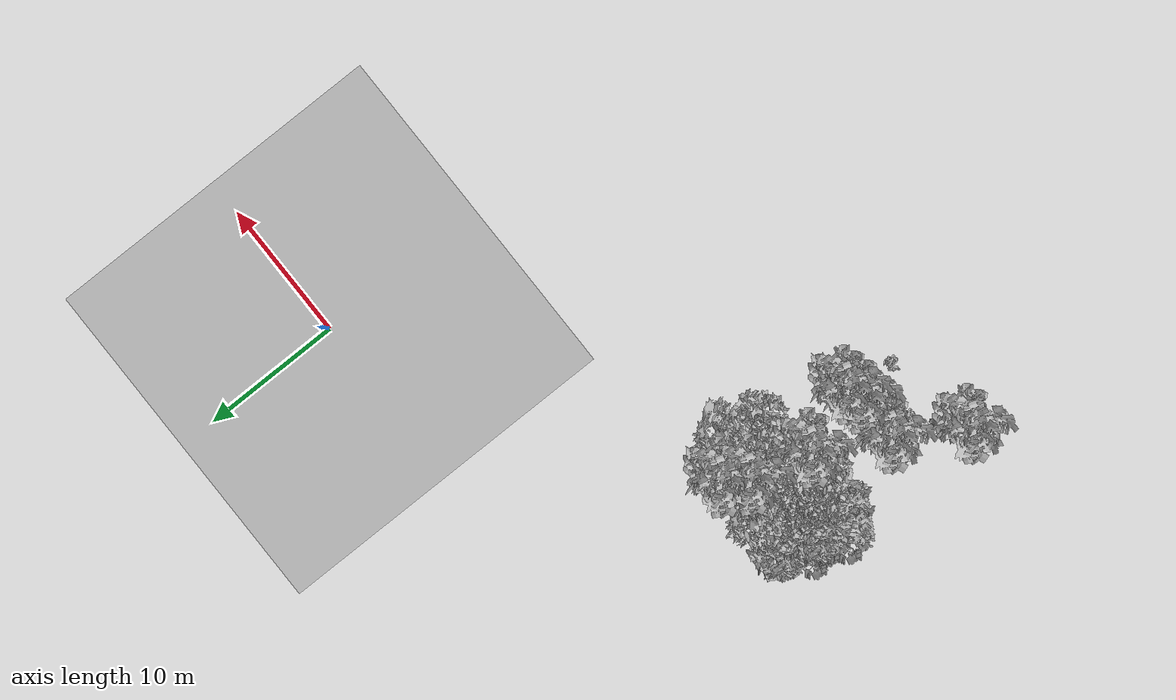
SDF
<sdf version="1.7">
 <world name="default">
  <model name="ground_plane">
   <static>1</static>
   <link name="link">
    <collision name="collision">
     <pose>-50 0 0 0 -0 0</pose>
     <geometry><plane><normal>0 0 1</normal><size>80 80</size></plane></geometry>
     <surface><contact><ode><min_depth>0.01</min_depth><max_vel>0</max_vel></ode></contact></surface>
    </collision>
    <visual name="grass">
     <cast_shadows>0</cast_shadows>
     <geometry>
      <mesh>
       <scale>0.46714285714285714 0.46714285714285714 0.1</scale>
       <uri>file://grass_plane/meshes/grass_plane.dae</uri>
      </mesh>
     </geometry>
    </visual>
   </link>
  </model>
  <model name="Tree 116">
   <static>1</static>
   <pose>-25.24563482658276 -19.226618161263687 0 1.57079 -0 0</pose>
   <link name="link">
    <collision name="collision">
     <geometry><mesh><scale>3.5 5 3.5</scale><uri>model://tree_9/meshes/tree_9.obj</uri></mesh></geometry>
    </collision>
    <visual name="visual">
     <geometry><mesh><scale>3.5 5 3.5</scale><uri>model://tree_9/meshes/tree_9.obj</uri></mesh></geometry>
    </visual>
   </link>
  </model>
  <model name="Tree 118">
   <static>1</static>
   <pose>-24.490371718097492 -23.640831827640074 0 1.57079 -0 0</pose>
   <link name="link">
    <collision name="collision">
     <geometry><mesh><scale>3.5 5 3.5</scale><uri>model://tree_9/meshes/tree_9.obj</uri></mesh></geometry>
    </collision>
    <visual name="visual">
     <geometry><mesh><scale>3.5 5 3.5</scale><uri>model://tree_9/meshes/tree_9.obj</uri></mesh></geometry>
    </visual>
   </link>
  </model>
  <model name="Tree 132">
   <static>1</static>
   <pose>-23.184953060325313 -13.715686504279976 0 1.57079 -0 0</pose>
   <link name="link">
    <collision name="collision">
     <geometry><mesh><scale>3.5 5 3.5</scale><uri>model://tree_9/meshes/tree_9.obj</uri></mesh></geometry>
    </collision>
    <visual name="visual">
     <geometry><mesh><scale>3.5 5 3.5</scale><uri>model://tree_9/meshes/tree_9.obj</uri></mesh></geometry>
    </visual>
   </link>
  </model>
  <model name="Tree 153">
   <static>1</static>
   <pose>-24.647784751836657 -16.289933524823645 0 1.57079 -0 0</pose>
   <link name="link">
    <collision name="collision">
     <geometry><mesh><scale>3.5 5 3.5</scale><uri>model://tree_2/meshes/tree_2.obj</uri></mesh></geometry>
    </collision>
    <visual name="visual">
     <geometry><mesh><scale>3.5 5 3.5</scale><uri>model://tree_2/meshes/tree_2.obj</uri></mesh></geometry>
    </visual>
   </link>
  </model>
  <model name="Tree 154">
   <static>1</static>
   <pose>-23.54956282626521 -23.37497832355841 0 1.57079 -0 0</pose>
   <link name="link">
    <collision name="collision">
     <geometry><mesh><scale>3.5 5 3.5</scale><uri>model://tree_9/meshes/tree_9.obj</uri></mesh></geometry>
    </collision>
    <visual name="visual">
     <geometry><mesh><scale>3.5 5 3.5</scale><uri>model://tree_9/meshes/tree_9.obj</uri></mesh></geometry>
    </visual>
   </link>
  </model>
  <model name="Tree 159">
   <static>1</static>
   <pose>-24.210653283695706 -15.219243845675294 0 1.57079 -0 0</pose>
   <link name="link">
    <collision name="collision">
     <geometry><mesh><scale>3.5 5 3.5</scale><uri>model://tree_9/meshes/tree_9.obj</uri></mesh></geometry>
    </collision>
    <visual name="visual">
     <geometry><mesh><scale>3.5 5 3.5</scale><uri>model://tree_9/meshes/tree_9.obj</uri></mesh></geometry>
    </visual>
   </link>
  </model>
  <model name="Tree 200">
   <static>1</static>
   <pose>-28.195686925985747 -17.972710262287457 0 1.57079 -0 0</pose>
   <link name="link">
    <collision name="collision">
     <geometry><mesh><scale>3.5 5 3.5</scale><uri>model://tree_2/meshes/tree_2.obj</uri></mesh></geometry>
    </collision>
    <visual name="visual">
     <geometry><mesh><scale>3.5 5 3.5</scale><uri>model://tree_2/meshes/tree_2.obj</uri></mesh></geometry>
    </visual>
   </link>
  </model>
  <model name="Tree 279">
   <static>1</static>
   <pose>-29.289672820131123 -17.38214986762965 0 1.57079 -0 0</pose>
   <link name="link">
    <collision name="collision">
     <geometry><mesh><scale>3.5 5 3.5</scale><uri>model://tree_2/meshes/tree_2.obj</uri></mesh></geometry>
    </collision>
    <visual name="visual">
     <geometry><mesh><scale>3.5 5 3.5</scale><uri>model://tree_2/meshes/tree_2.obj</uri></mesh></geometry>
    </visual>
   </link>
  </model>
  <model name="Tree 312">
   <static>1</static>
   <pose>-28.535518461506136 -16.197226448436084 0 1.57079 -0 0</pose>
   <link name="link">
    <collision name="collision">
     <geometry><mesh><scale>3.5 5 3.5</scale><uri>model://tree_2/meshes/tree_2.obj</uri></mesh></geometry>
    </collision>
    <visual name="visual">
     <geometry><mesh><scale>3.5 5 3.5</scale><uri>model://tree_2/meshes/tree_2.obj</uri></mesh></geometry>
    </visual>
   </link>
  </model>
  <model name="Tree 340">
   <static>1</static>
   <pose>-28.65702400360805 -15.055393075168631 0 1.57079 -0 0</pose>
   <link name="link">
    <collision name="collision">
     <geometry><mesh><scale>3.5 5 3.5</scale><uri>model://tree_2/meshes/tree_2.obj</uri></mesh></geometry>
    </collision>
    <visual name="visual">
     <geometry><mesh><scale>3.5 5 3.5</scale><uri>model://tree_2/meshes/tree_2.obj</uri></mesh></geometry>
    </visual>
   </link>
  </model>
  <model name="Tree 358">
   <static>1</static>
   <pose>-22.932301001570202 -16.908631481751975 0 1.57079 -0 0</pose>
   <link name="link">
    <collision name="collision">
     <geometry><mesh><scale>3.5 5 3.5</scale><uri>model://tree_2/meshes/tree_2.obj</uri></mesh></geometry>
    </collision>
    <visual name="visual">
     <geometry><mesh><scale>3.5 5 3.5</scale><uri>model://tree_2/meshes/tree_2.obj</uri></mesh></geometry>
    </visual>
   </link>
  </model>
  <model name="Tree 422">
   <static>1</static>
   <pose>-27.610587199718452 -23.648574940186997 0 1.57079 -0 0</pose>
   <link name="link">
    <collision name="collision">
     <geometry><mesh><scale>3.5 5 3.5</scale><uri>model://tree_9/meshes/tree_9.obj</uri></mesh></geometry>
    </collision>
    <visual name="visual">
     <geometry><mesh><scale>3.5 5 3.5</scale><uri>model://tree_9/meshes/tree_9.obj</uri></mesh></geometry>
    </visual>
   </link>
  </model>
  <model name="Tree 562">
   <static>1</static>
   <pose>-30.2408395843432 -27.912288783172777 0 1.57079 -0 0</pose>
   <link name="link">
    <collision name="collision">
     <geometry><mesh><scale>3.5 5 3.5</scale><uri>model://tree_9/meshes/tree_9.obj</uri></mesh></geometry>
    </collision>
    <visual name="visual">
     <geometry><mesh><scale>3.5 5 3.5</scale><uri>model://tree_9/meshes/tree_9.obj</uri></mesh></geometry>
    </visual>
   </link>
  </model>
  <model name="Bush 48">
   <static>1</static>
   <pose>-28.294148278269745 -25.47334539822531 0 1.57079 -0 0</pose>
   <link name="link">
    <collision name="collision">
     <geometry><mesh><scale>2 2 2</scale><uri>model://bush_2/meshes/bush_2.obj</uri></mesh></geometry>
     <surface><contact><collide_without_contact>false</collide_without_contact></contact></surface>
    </collision>
    <visual name="visual">
     <geometry><mesh><scale>2 2 2</scale><uri>model://bush_2/meshes/bush_2.obj</uri></mesh></geometry>
    </visual>
   </link>
  </model>
  <model name="Bush 69">
   <static>1</static>
   <pose>-28.8216672484319 -26.715461170658514 0 1.57079 -0 0</pose>
   <link name="link">
    <collision name="collision">
     <geometry><mesh><scale>2 2 2</scale><uri>model://bush_2/meshes/bush_2.obj</uri></mesh></geometry>
     <surface><contact><collide_without_contact>false</collide_without_contact></contact></surface>
    </collision>
    <visual name="visual">
     <geometry><mesh><scale>2 2 2</scale><uri>model://bush_2/meshes/bush_2.obj</uri></mesh></geometry>
    </visual>
   </link>
  </model>
  <model name="Bush 128">
   <static>1</static>
   <pose>-29.173840663325308 -14.282500518536203 0 1.57079 -0 0</pose>
   <link name="link">
    <collision name="collision">
     <geometry><mesh><scale>2 2 2</scale><uri>model://bush_2/meshes/bush_2.obj</uri></mesh></geometry>
     <surface><contact><collide_without_contact>false</collide_without_contact></contact></surface>
    </collision>
    <visual name="visual">
     <geometry><mesh><scale>2 2 2</scale><uri>model://bush_2/meshes/bush_2.obj</uri></mesh></geometry>
    </visual>
   </link>
  </model>
  <model name="Bush 162">
   <static>1</static>
   <pose>-27.27859116705745 -17.434106972118954 0 1.57079 -0 0</pose>
   <link name="link">
    <collision name="collision">
     <geometry><mesh><scale>2 2 2</scale><uri>model://bush_2/meshes/bush_2.obj</uri></mesh></geometry>
     <surface><contact><collide_without_contact>false</collide_without_contact></contact></surface>
    </collision>
    <visual name="visual">
     <geometry><mesh><scale>2 2 2</scale><uri>model://bush_2/meshes/bush_2.obj</uri></mesh></geometry>
    </visual>
   </link>
  </model>
  <model name="Bush 311">
   <static>1</static>
   <pose>-29.13265650306692 -16.47178595528682 0 1.57079 -0 0</pose>
   <link name="link">
    <collision name="collision">
     <geometry><mesh><scale>2 2 2</scale><uri>model://bush_2/meshes/bush_2.obj</uri></mesh></geometry>
     <surface><contact><collide_without_contact>false</collide_without_contact></contact></surface>
    </collision>
    <visual name="visual">
     <geometry><mesh><scale>2 2 2</scale><uri>model://bush_2/meshes/bush_2.obj</uri></mesh></geometry>
    </visual>
   </link>
  </model>
  <model name="Bush 319">
   <static>1</static>
   <pose>-23.7470203367347 -19.329719414078852 0 1.57079 -0 0</pose>
   <link name="link">
    <collision name="collision">
     <geometry><mesh><scale>2 2 2</scale><uri>model://bush_2/meshes/bush_2.obj</uri></mesh></geometry>
     <surface><contact><collide_without_contact>false</collide_without_contact></contact></surface>
    </collision>
    <visual name="visual">
     <geometry><mesh><scale>2 2 2</scale><uri>model://bush_2/meshes/bush_2.obj</uri></mesh></geometry>
    </visual>
   </link>
  </model>
  <model name="Bush 343">
   <static>1</static>
   <pose>-24.11555489374387 -19.16224193324694 0 1.57079 -0 0</pose>
   <link name="link">
    <collision name="collision">
     <geometry><mesh><scale>2 2 2</scale><uri>model://bush_5/meshes/bush_5.obj</uri></mesh></geometry>
     <surface><contact><collide_without_contact>false</collide_without_contact></contact></surface>
    </collision>
    <visual name="visual">
     <geometry><mesh><scale>2 2 2</scale><uri>model://bush_5/meshes/bush_5.obj</uri></mesh></geometry>
    </visual>
   </link>
  </model>
  <model name="Bush 347">
   <static>1</static>
   <pose>-25.31925824855311 -28.083265579123147 0 1.57079 -0 0</pose>
   <link name="link">
    <collision name="collision">
     <geometry><mesh><scale>2 2 2</scale><uri>model://bush_2/meshes/bush_2.obj</uri></mesh></geometry>
     <surface><contact><collide_without_contact>false</collide_without_contact></contact></surface>
    </collision>
    <visual name="visual">
     <geometry><mesh><scale>2 2 2</scale><uri>model://bush_2/meshes/bush_2.obj</uri></mesh></geometry>
    </visual>
   </link>
  </model>
  <model name="Bush 359">
   <static>1</static>
   <pose>-25.046784973136397 -24.202091685205964 0 1.57079 -0 0</pose>
   <link name="link">
    <collision name="collision">
     <geometry><mesh><scale>2 2 2</scale><uri>model://bush_0/meshes/bush_0.obj</uri></mesh></geometry>
     <surface><contact><collide_without_contact>false</collide_without_contact></contact></surface>
    </collision>
    <visual name="visual">
     <geometry><mesh><scale>2 2 2</scale><uri>model://bush_0/meshes/bush_0.obj</uri></mesh></geometry>
    </visual>
   </link>
  </model>
  <model name="Bush 540">
   <static>1</static>
   <pose>-27.3347824059988 -14.590963132112371 0 1.57079 -0 0</pose>
   <link name="link">
    <collision name="collision">
     <geometry><mesh><scale>2 2 2</scale><uri>model://bush_5/meshes/bush_5.obj</uri></mesh></geometry>
     <surface><contact><collide_without_contact>false</collide_without_contact></contact></surface>
    </collision>
    <visual name="visual">
     <geometry><mesh><scale>2 2 2</scale><uri>model://bush_5/meshes/bush_5.obj</uri></mesh></geometry>
    </visual>
   </link>
  </model>
 </world>
</sdf>
